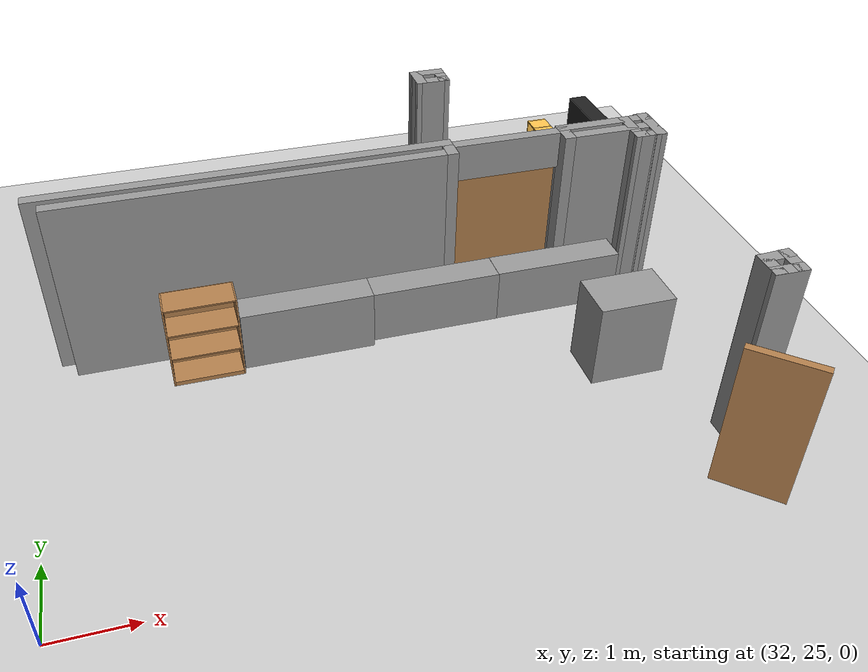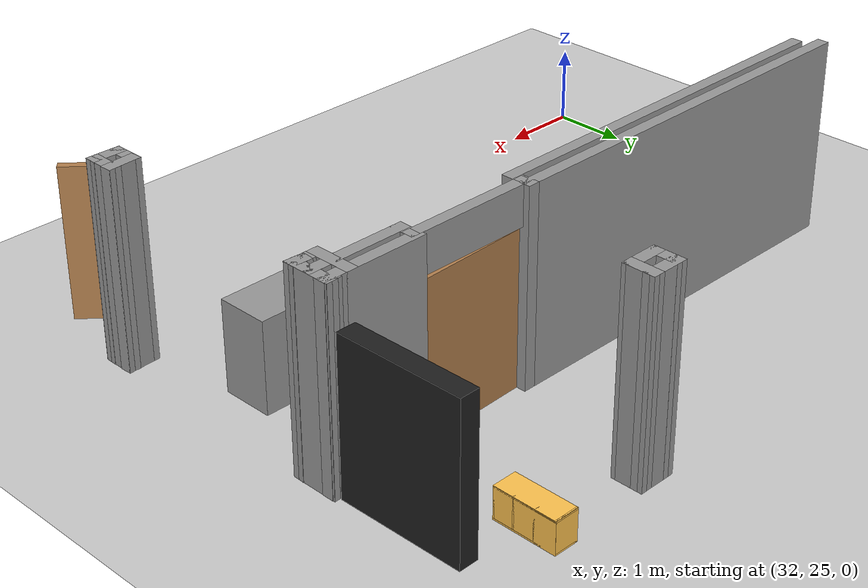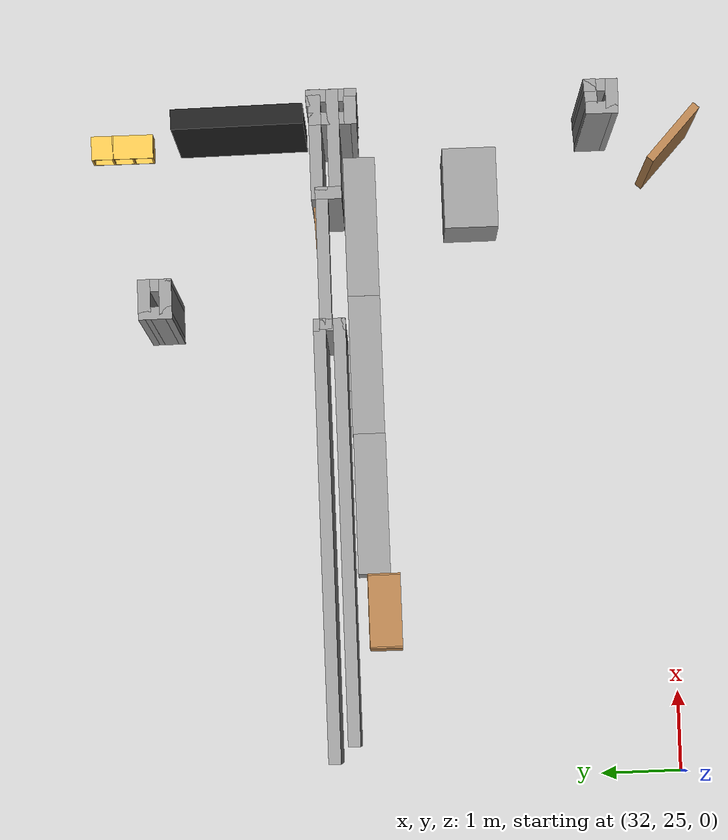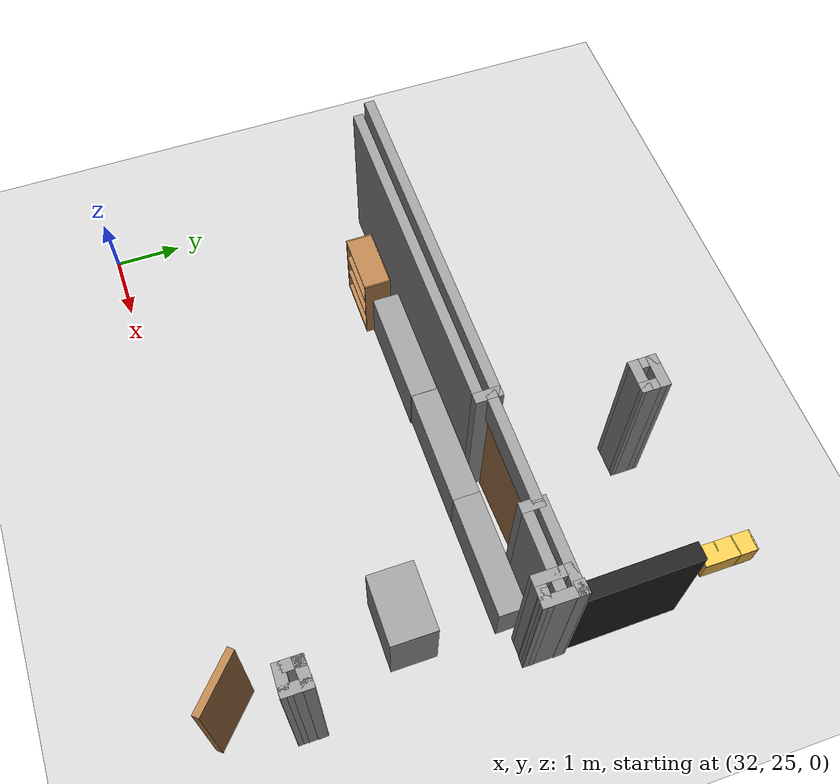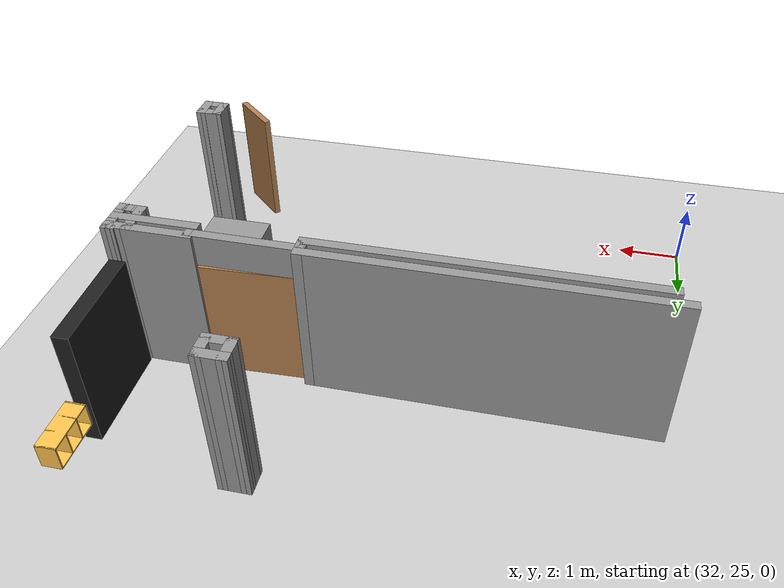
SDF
<sdf version="1.6">
 <world name="default">
  <model name="ground_plane">
   <static>1</static>
   <link name="link">
    <collision name="collision">
     <geometry><plane><normal>0 0 1</normal><size>100 100</size></plane></geometry>
     <surface><friction><ode><mu>100</mu><mu2>50</mu2></ode></friction></surface>
    </collision>
    <visual name="visual">
     <cast_shadows>0</cast_shadows>
     <geometry><plane><normal>0 0 1</normal><size>100 100</size></plane></geometry>
     <material>
      <script><uri>file://media/materials/scripts/gazebo.material</uri><name>Gazebo/Grey</name></script>
     </material>
    </visual>
   </link>
  </model>
  <model name="CVSSP">
   <pose>23.8714 24.094 0 0 -0 0</pose>
   <link name="Wall_10">
    <collision name="Wall_10_Collision">
     <geometry><box><size>0.244894 0.15 2.5</size></box></geometry>
     <pose>0 0 1.25 0 -0 0</pose>
    </collision>
    <visual name="Wall_10_Visual">
     <pose>0 0 1.25 0 -0 0</pose>
     <geometry><box><size>0.244894 0.15 2.5</size></box></geometry>
     <material>
      <script><uri>file://media/materials/scripts/gazebo.material</uri><name>Gazebo/Grey</name></script>
      <ambient>1 1 1 1</ambient>
     </material>
    </visual>
    <pose>16.3427 4.74414 0 0 -0 3.0813</pose>
   </link>
   <link name="Wall_101">
    <collision name="Wall_101_Collision">
     <geometry><box><size>0.38805 0.15 2.5</size></box></geometry>
     <pose>0 0 1.25 0 -0 0</pose>
    </collision>
    <visual name="Wall_101_Visual">
     <pose>0 0 1.25 0 -0 0</pose>
     <geometry><box><size>0.38805 0.15 2.5</size></box></geometry>
     <material>
      <script><uri>file://media/materials/scripts/gazebo.material</uri><name>Gazebo/Grey</name></script>
      <ambient>1 1 1 1</ambient>
     </material>
    </visual>
    <pose>13.6125 5.08725 0 0 0 -1.5708</pose>
   </link>
   <link name="Wall_103">
    <pose>14.4193 5.12692 0 0 -0 3.13861</pose>
    <visual name="Wall_103_Visual_0">
     <pose>-0.803949 0 1.25 0 -0 0</pose>
     <geometry><box><size>0.113401 0.15 2.5</size></box></geometry>
     <material>
      <script><uri>file://media/materials/scripts/gazebo.material</uri><name>Gazebo/Grey</name></script>
      <ambient>1 1 1 1</ambient>
     </material>
    </visual>
    <collision name="Wall_103_Collision_0">
     <geometry><box><size>0.113401 0.15 2.5</size></box></geometry>
     <pose>-0.803949 0 1.25 0 -0 0</pose>
    </collision>
    <visual name="Wall_103_Visual_1">
     <pose>0.799121 0 1.25 0 -0 0</pose>
     <geometry><box><size>0.123058 0.15 2.5</size></box></geometry>
     <material>
      <script><uri>file://media/materials/scripts/gazebo.material</uri><name>Gazebo/Grey</name></script>
      <ambient>1 1 1 1</ambient>
     </material>
    </visual>
    <collision name="Wall_103_Collision_1">
     <geometry><box><size>0.123058 0.15 2.5</size></box></geometry>
     <pose>0.799121 0 1.25 0 -0 0</pose>
    </collision>
    <visual name="Wall_103_Visual_2">
     <pose>-0.004828 0 2.25 0 -0 0</pose>
     <geometry><box><size>1.48484 0.15 0.5</size></box></geometry>
     <material>
      <script><uri>file://media/materials/scripts/gazebo.material</uri><name>Gazebo/Grey</name></script>
      <ambient>1 1 1 1</ambient>
     </material>
    </visual>
    <collision name="Wall_103_Collision_2">
     <geometry><box><size>1.48484 0.15 0.5</size></box></geometry>
     <pose>-0.004828 0 2.25 0 -0 0</pose>
    </collision>
   </link>
   <link name="Wall_105">
    <collision name="Wall_105_Collision">
     <geometry><box><size>0.321526 0.15 2.5</size></box></geometry>
     <pose>0 0 1.25 0 -0 0</pose>
    </collision>
    <visual name="Wall_105_Visual">
     <pose>0 0 1.25 0 -0 0</pose>
     <geometry><box><size>0.321526 0.15 2.5</size></box></geometry>
     <material>
      <script><uri>file://media/materials/scripts/gazebo.material</uri><name>Gazebo/Grey</name></script>
      <ambient>1 1 1 1</ambient>
     </material>
    </visual>
    <pose>15.205 5.04453 0 0 0 -1.5708</pose>
   </link>
   <link name="Wall_106">
    <collision name="Wall_106_Collision">
     <geometry><box><size>1.33354 0.15 2.5</size></box></geometry>
     <pose>0 0 1.25 0 -0 0</pose>
    </collision>
    <visual name="Wall_106_Visual">
     <pose>0 0 1.25 0 -0 0</pose>
     <geometry><box><size>1.33354 0.15 2.5</size></box></geometry>
     <material>
      <script><uri>file://media/materials/scripts/gazebo.material</uri><name>Gazebo/Grey</name></script>
      <ambient>1 1 1 1</ambient>
     </material>
    </visual>
    <pose>15.7968 4.95877 0 0 -0 0</pose>
   </link>
   <link name="Wall_108">
    <collision name="Wall_108_Collision">
     <geometry><box><size>0.336995 0.15 2.5</size></box></geometry>
     <pose>0 0 1.25 0 -0 0</pose>
    </collision>
    <visual name="Wall_108_Visual">
     <pose>0 0 1.25 0 -0 0</pose>
     <geometry><box><size>0.336995 0.15 2.5</size></box></geometry>
     <material>
      <script><uri>file://media/materials/scripts/gazebo.material</uri><name>Gazebo/Grey</name></script>
      <ambient>1 1 1 1</ambient>
     </material>
    </visual>
    <pose>16.2019 4.74711 0 0 -0 3.1404</pose>
   </link>
   <link name="Wall_109">
    <collision name="Wall_109_Collision">
     <geometry><box><size>0.578815 0.15 2.5</size></box></geometry>
     <pose>0 0 1.25 0 -0 0</pose>
    </collision>
    <visual name="Wall_109_Visual">
     <pose>0 0 1.25 0 -0 0</pose>
     <geometry><box><size>0.578815 0.15 2.5</size></box></geometry>
     <material>
      <script><uri>file://media/materials/scripts/gazebo.material</uri><name>Gazebo/Grey</name></script>
      <ambient>1 1 1 1</ambient>
     </material>
    </visual>
    <pose>16.1084 4.96163 0 0 -0 1.5708</pose>
   </link>
   <link name="Wall_110">
    <collision name="Wall_110_Collision">
     <geometry><box><size>0.435877 0.15 2.5</size></box></geometry>
     <pose>0 0 1.25 0 -0 0</pose>
    </collision>
    <visual name="Wall_110_Visual">
     <pose>0 0 1.25 0 -0 0</pose>
     <geometry><box><size>0.435877 0.15 2.5</size></box></geometry>
     <material>
      <script><uri>file://media/materials/scripts/gazebo.material</uri><name>Gazebo/Grey</name></script>
      <ambient>1 1 1 1</ambient>
     </material>
    </visual>
    <pose>16.2513 5.17604 0 0 -0 0</pose>
   </link>
   <link name="Wall_112">
    <collision name="Wall_112_Collision">
     <geometry><box><size>1.05344 0.15 2.5</size></box></geometry>
     <pose>0 0 1.25 0 -0 0</pose>
    </collision>
    <visual name="Wall_112_Visual">
     <pose>0 0 1.25 0 -0 0</pose>
     <geometry><box><size>1.05344 0.15 2.5</size></box></geometry>
     <material>
      <script><uri>file://media/materials/scripts/gazebo.material</uri><name>Gazebo/Grey</name></script>
      <ambient>1 1 1 1</ambient>
     </material>
    </visual>
    <pose>15.6567 5.17604 0 0 -0 3.14159</pose>
   </link>
   <link name="Wall_48">
    <collision name="Wall_48_Collision">
     <geometry><box><size>0.485616 0.15 2.5</size></box></geometry>
     <pose>0 0 1.25 0 -0 0</pose>
    </collision>
    <visual name="Wall_48_Visual">
     <pose>0 0 1.25 0 -0 0</pose>
     <geometry><box><size>0.485616 0.15 2.5</size></box></geometry>
     <material>
      <script><uri>file://media/materials/scripts/gazebo.material</uri><name>Gazebo/Grey</name></script>
      <ambient>1 1 1 1</ambient>
     </material>
    </visual>
    <pose>13.9944 7.29164 0 0 0 -0.000129</pose>
   </link>
   <link name="Wall_49">
    <collision name="Wall_49_Collision">
     <geometry><box><size>0.405637 0.15 2.5</size></box></geometry>
     <pose>0 0 1.25 0 -0 0</pose>
    </collision>
    <visual name="Wall_49_Visual">
     <pose>0 0 1.25 0 -0 0</pose>
     <geometry><box><size>0.405637 0.15 2.5</size></box></geometry>
     <material>
      <script><uri>file://media/materials/scripts/gazebo.material</uri><name>Gazebo/Grey</name></script>
      <ambient>1 1 1 1</ambient>
     </material>
    </visual>
    <pose>14.162 7.1638 0 0 0 -1.57228</pose>
   </link>
   <link name="Wall_50">
    <collision name="Wall_50_Collision">
     <geometry><box><size>0.483145 0.15 2.5</size></box></geometry>
     <pose>0 0 1.25 0 -0 0</pose>
    </collision>
    <visual name="Wall_50_Visual">
     <pose>0 0 1.25 0 -0 0</pose>
     <geometry><box><size>0.483145 0.15 2.5</size></box></geometry>
     <material>
      <script><uri>file://media/materials/scripts/gazebo.material</uri><name>Gazebo/Grey</name></script>
      <ambient>1 1 1 1</ambient>
     </material>
    </visual>
    <pose>13.9952 7.03593 0 0 0 -3.14129</pose>
   </link>
   <link name="Wall_51">
    <collision name="Wall_51_Collision">
     <geometry><box><size>0.405791 0.15 2.5</size></box></geometry>
     <pose>0 0 1.25 0 -0 0</pose>
    </collision>
    <visual name="Wall_51_Visual">
     <pose>0 0 1.25 0 -0 0</pose>
     <geometry><box><size>0.405791 0.15 2.5</size></box></geometry>
     <material>
      <script><uri>file://media/materials/scripts/gazebo.material</uri><name>Gazebo/Grey</name></script>
      <ambient>1 1 1 1</ambient>
     </material>
    </visual>
    <pose>13.8276 7.16378 0 0 -0 1.5792</pose>
   </link>
   <link name="Wall_729">
    <collision name="Wall_729_Collision">
     <geometry><box><size>0.409263 0.15 2.5</size></box></geometry>
     <pose>0 0 1.25 0 -0 0</pose>
    </collision>
    <visual name="Wall_729_Visual">
     <pose>0 0 1.25 0 -0 0</pose>
     <geometry><box><size>0.409263 0.15 2.5</size></box></geometry>
     <material>
      <script><uri>file://media/materials/scripts/gazebo.material</uri><name>Gazebo/Grey</name></script>
      <ambient>1 1 1 1</ambient>
     </material>
    </visual>
    <pose>16.3949 1.72388 0 0 -0 1.57329</pose>
   </link>
   <link name="Wall_730">
    <collision name="Wall_730_Collision">
     <geometry><box><size>0.423174 0.15 2.5</size></box></geometry>
     <pose>0 0 1.25 0 -0 0</pose>
    </collision>
    <visual name="Wall_730_Visual">
     <pose>0 0 1.25 0 -0 0</pose>
     <geometry><box><size>0.423174 0.15 2.5</size></box></geometry>
     <material>
      <script><uri>file://media/materials/scripts/gazebo.material</uri><name>Gazebo/Grey</name></script>
      <ambient>1 1 1 1</ambient>
     </material>
    </visual>
    <pose>16.2619 1.84596 0 0 0 -3.08621</pose>
   </link>
   <link name="Wall_731">
    <collision name="Wall_731_Collision">
     <geometry><box><size>0.388455 0.15 2.5</size></box></geometry>
     <pose>0 0 1.25 0 -0 0</pose>
    </collision>
    <visual name="Wall_731_Visual">
     <pose>0 0 1.25 0 -0 0</pose>
     <geometry><box><size>0.388455 0.15 2.5</size></box></geometry>
     <material>
      <script><uri>file://media/materials/scripts/gazebo.material</uri><name>Gazebo/Grey</name></script>
      <ambient>1 1 1 1</ambient>
     </material>
    </visual>
    <pose>16.1221 1.71917 0 0 0 -1.56809</pose>
   </link>
   <link name="Wall_732">
    <collision name="Wall_732_Collision">
     <geometry><box><size>0.422814 0.15 2.5</size></box></geometry>
     <pose>0 0 1.25 0 -0 0</pose>
    </collision>
    <visual name="Wall_732_Visual">
     <pose>0 0 1.25 0 -0 0</pose>
     <geometry><box><size>0.422814 0.15 2.5</size></box></geometry>
     <material>
      <script><uri>file://media/materials/scripts/gazebo.material</uri><name>Gazebo/Grey</name></script>
      <ambient>1 1 1 1</ambient>
     </material>
    </visual>
    <pose>16.2588 1.5934 0 0 0 -0.020841</pose>
   </link>
   <link name="Wall_8">
    <collision name="Wall_8_Collision">
     <geometry><box><size>0.200072 0.15 2.5</size></box></geometry>
     <pose>0 0 1.25 0 -0 0</pose>
    </collision>
    <visual name="Wall_8_Visual">
     <pose>0 0 1.25 0 -0 0</pose>
     <geometry><box><size>0.200072 0.15 2.5</size></box></geometry>
     <material>
      <script><uri>file://media/materials/scripts/gazebo.material</uri><name>Gazebo/Grey</name></script>
      <ambient>1 1 1 1</ambient>
     </material>
    </visual>
    <pose>16.3651 5.20082 0 0 -0 0.028929</pose>
   </link>
   <link name="Wall_9">
    <collision name="Wall_9_Collision">
     <geometry><box><size>0.610308 0.15 2.5</size></box></geometry>
     <pose>0 0 1.25 0 -0 0</pose>
    </collision>
    <visual name="Wall_9_Visual">
     <pose>0 0 1.25 0 -0 0</pose>
     <geometry><box><size>0.610308 0.15 2.5</size></box></geometry>
     <material>
      <script><uri>file://media/materials/scripts/gazebo.material</uri><name>Gazebo/Grey</name></script>
      <ambient>1 1 1 1</ambient>
     </material>
    </visual>
    <pose>16.3901 4.97141 0 0 0 -1.5708</pose>
   </link>
   <link name="Wall_95">
    <collision name="Wall_95_Collision">
     <geometry><box><size>5.10938 0.15 2.5</size></box></geometry>
     <pose>0 0 1.25 0 -0 0</pose>
    </collision>
    <visual name="Wall_95_Visual">
     <pose>0 0 1.25 0 -0 0</pose>
     <geometry><box><size>5.10938 0.15 2.5</size></box></geometry>
     <material>
      <script><uri>file://media/materials/scripts/gazebo.material</uri><name>Gazebo/Grey</name></script>
      <ambient>1 1 1 1</ambient>
     </material>
    </visual>
    <pose>11.1328 4.96823 0 0 -0 0</pose>
   </link>
   <link name="Wall_99">
    <collision name="Wall_99_Collision">
     <geometry><box><size>5.30775 0.15 2.5</size></box></geometry>
     <pose>0 0 1.25 0 -0 0</pose>
    </collision>
    <visual name="Wall_99_Visual">
     <pose>0 0 1.25 0 -0 0</pose>
     <geometry><box><size>5.30775 0.15 2.5</size></box></geometry>
     <material>
      <script><uri>file://media/materials/scripts/gazebo.material</uri><name>Gazebo/Grey</name></script>
      <ambient>1 1 1 1</ambient>
     </material>
    </visual>
    <pose>11.0336 5.20628 0 0 -0 3.14159</pose>
   </link>
   <static>1</static>
  </model>
  <model name="bookshelf_oak">
   <link name="link">
    <inertial><mass>1</mass></inertial>
    <visual name="visual4">
     <pose>0 -0.195 0.03 0 -0 0</pose>
     <geometry><box><size>0.88 0.4 0.06</size></box></geometry>
     <material>
      <script><uri>file://media/materials/scripts/gazebo.material</uri><name>Gazebo/Wood</name></script>
      <shader type="pixel"/>
     </material>
    </visual>
    <visual name="visual3">
     <pose>-0.45 -0.195 0.6 0 -0 0</pose>
     <geometry><box><size>0.02 0.4 1.2</size></box></geometry>
     <material>
      <script><uri>file://media/materials/scripts/gazebo.material</uri><name>Gazebo/Wood</name></script>
      <shader type="pixel"/>
     </material>
    </visual>
    <visual name="visual5">
     <pose>0 -0.195 1.19 0 -0 0</pose>
     <geometry><box><size>0.88 0.4 0.02</size></box></geometry>
     <material>
      <script><uri>file://media/materials/scripts/gazebo.material</uri><name>Gazebo/Wood</name></script>
      <shader type="pixel"/>
     </material>
    </visual>
    <visual name="visual2">
     <pose>0.45 -0.195 0.6 0 -0 0</pose>
     <geometry><box><size>0.02 0.4 1.2</size></box></geometry>
     <material>
      <script><uri>file://media/materials/scripts/gazebo.material</uri><name>Gazebo/Wood</name></script>
      <shader type="pixel"/>
     </material>
    </visual>
    <visual name="visual1">
     <pose>0 0.005 0.6 0 -0 0</pose>
     <geometry><box><size>0.9 0.01 1.2</size></box></geometry>
     <material>
      <script><uri>file://media/materials/scripts/gazebo.material</uri><name>Gazebo/Wood</name></script>
      <shader type="pixel"/>
     </material>
    </visual>
    <visual name="visual6">
     <pose>0 -0.195 0.43 0 -0 0</pose>
     <geometry><box><size>0.88 0.4 0.02</size></box></geometry>
     <material>
      <script><uri>file://media/materials/scripts/gazebo.material</uri><name>Gazebo/Wood</name></script>
      <shader type="pixel"/>
     </material>
    </visual>
    <visual name="visual7">
     <pose>0 -0.195 0.8 0 -0 0</pose>
     <geometry><box><size>0.88 0.4 0.02</size></box></geometry>
     <material>
      <script><uri>file://media/materials/scripts/gazebo.material</uri><name>Gazebo/Wood</name></script>
      <shader type="pixel"/>
     </material>
    </visual>
    <collision name="back">
     <pose>0 0.005 0.6 0 -0 0</pose>
     <geometry><box><size>0.9 0.01 1.2</size></box></geometry>
     <surface>
      <friction>
       <ode><mu>1</mu><mu2>1</mu2><fdir1>0 0 0</fdir1><slip1>0</slip1><slip2>0</slip2></ode>
       <torsional>
        <coefficient>1</coefficient>
        <patch_radius>0</patch_radius>
        <surface_radius>0</surface_radius>
        <use_patch_radius>1</use_patch_radius>
        <ode><slip>0</slip></ode>
       </torsional>
      </friction>
      <bounce><restitution_coefficient>0</restitution_coefficient><threshold>1e+06</threshold></bounce>
      <contact>
       <collide_without_contact>0</collide_without_contact>
       <collide_without_contact_bitmask>1</collide_without_contact_bitmask>
       <collide_bitmask>1</collide_bitmask>
       <ode>
        <soft_cfm>0</soft_cfm>
        <soft_erp>0.2</soft_erp>
        <kp>1e+13</kp>
        <kd>1</kd>
        <max_vel>0.01</max_vel>
        <min_depth>0</min_depth>
       </ode>
       <bullet>
        <split_impulse>1</split_impulse>
        <split_impulse_penetration_threshold>-0.01</split_impulse_penetration_threshold>
        <soft_cfm>0</soft_cfm>
        <soft_erp>0.2</soft_erp>
        <kp>1e+13</kp>
        <kd>1</kd>
       </bullet>
      </contact>
     </surface>
    </collision>
    <collision name="left_side">
     <pose>0.45 -0.195 0.6 0 -0 0</pose>
     <geometry><box><size>0.02 0.4 1.2</size></box></geometry>
     <surface>
      <friction>
       <ode><mu>1</mu><mu2>1</mu2><fdir1>0 0 0</fdir1><slip1>0</slip1><slip2>0</slip2></ode>
       <torsional>
        <coefficient>1</coefficient>
        <patch_radius>0</patch_radius>
        <surface_radius>0</surface_radius>
        <use_patch_radius>1</use_patch_radius>
        <ode><slip>0</slip></ode>
       </torsional>
      </friction>
      <bounce><restitution_coefficient>0</restitution_coefficient><threshold>1e+06</threshold></bounce>
      <contact>
       <collide_without_contact>0</collide_without_contact>
       <collide_without_contact_bitmask>1</collide_without_contact_bitmask>
       <collide_bitmask>1</collide_bitmask>
       <ode>
        <soft_cfm>0</soft_cfm>
        <soft_erp>0.2</soft_erp>
        <kp>1e+13</kp>
        <kd>1</kd>
        <max_vel>0.01</max_vel>
        <min_depth>0</min_depth>
       </ode>
       <bullet>
        <split_impulse>1</split_impulse>
        <split_impulse_penetration_threshold>-0.01</split_impulse_penetration_threshold>
        <soft_cfm>0</soft_cfm>
        <soft_erp>0.2</soft_erp>
        <kp>1e+13</kp>
        <kd>1</kd>
       </bullet>
      </contact>
     </surface>
    </collision>
    <collision name="right_side">
     <pose>-0.45 -0.195 0.6 0 -0 0</pose>
     <geometry><box><size>0.02 0.4 1.2</size></box></geometry>
     <surface>
      <friction>
       <ode><mu>1</mu><mu2>1</mu2><fdir1>0 0 0</fdir1><slip1>0</slip1><slip2>0</slip2></ode>
       <torsional>
        <coefficient>1</coefficient>
        <patch_radius>0</patch_radius>
        <surface_radius>0</surface_radius>
        <use_patch_radius>1</use_patch_radius>
        <ode><slip>0</slip></ode>
       </torsional>
      </friction>
      <bounce><restitution_coefficient>0</restitution_coefficient><threshold>1e+06</threshold></bounce>
      <contact>
       <collide_without_contact>0</collide_without_contact>
       <collide_without_contact_bitmask>1</collide_without_contact_bitmask>
       <collide_bitmask>1</collide_bitmask>
       <ode>
        <soft_cfm>0</soft_cfm>
        <soft_erp>0.2</soft_erp>
        <kp>1e+13</kp>
        <kd>1</kd>
        <max_vel>0.01</max_vel>
        <min_depth>0</min_depth>
       </ode>
       <bullet>
        <split_impulse>1</split_impulse>
        <split_impulse_penetration_threshold>-0.01</split_impulse_penetration_threshold>
        <soft_cfm>0</soft_cfm>
        <soft_erp>0.2</soft_erp>
        <kp>1e+13</kp>
        <kd>1</kd>
       </bullet>
      </contact>
     </surface>
    </collision>
    <collision name="bottom">
     <pose>0 -0.195 0.03 0 -0 0</pose>
     <geometry><box><size>0.88 0.4 0.06</size></box></geometry>
     <surface>
      <friction>
       <ode><mu>1</mu><mu2>1</mu2><fdir1>0 0 0</fdir1><slip1>0</slip1><slip2>0</slip2></ode>
       <torsional>
        <coefficient>1</coefficient>
        <patch_radius>0</patch_radius>
        <surface_radius>0</surface_radius>
        <use_patch_radius>1</use_patch_radius>
        <ode><slip>0</slip></ode>
       </torsional>
      </friction>
      <bounce><restitution_coefficient>0</restitution_coefficient><threshold>1e+06</threshold></bounce>
      <contact>
       <collide_without_contact>0</collide_without_contact>
       <collide_without_contact_bitmask>1</collide_without_contact_bitmask>
       <collide_bitmask>1</collide_bitmask>
       <ode>
        <soft_cfm>0</soft_cfm>
        <soft_erp>0.2</soft_erp>
        <kp>1e+13</kp>
        <kd>1</kd>
        <max_vel>0.01</max_vel>
        <min_depth>0</min_depth>
       </ode>
       <bullet>
        <split_impulse>1</split_impulse>
        <split_impulse_penetration_threshold>-0.01</split_impulse_penetration_threshold>
        <soft_cfm>0</soft_cfm>
        <soft_erp>0.2</soft_erp>
        <kp>1e+13</kp>
        <kd>1</kd>
       </bullet>
      </contact>
     </surface>
    </collision>
    <collision name="top">
     <pose>0 -0.195 1.19 0 -0 0</pose>
     <geometry><box><size>0.88 0.4 0.02</size></box></geometry>
     <surface>
      <friction>
       <ode><mu>1</mu><mu2>1</mu2><fdir1>0 0 0</fdir1><slip1>0</slip1><slip2>0</slip2></ode>
       <torsional>
        <coefficient>1</coefficient>
        <patch_radius>0</patch_radius>
        <surface_radius>0</surface_radius>
        <use_patch_radius>1</use_patch_radius>
        <ode><slip>0</slip></ode>
       </torsional>
      </friction>
      <bounce><restitution_coefficient>0</restitution_coefficient><threshold>1e+06</threshold></bounce>
      <contact>
       <collide_without_contact>0</collide_without_contact>
       <collide_without_contact_bitmask>1</collide_without_contact_bitmask>
       <collide_bitmask>1</collide_bitmask>
       <ode>
        <soft_cfm>0</soft_cfm>
        <soft_erp>0.2</soft_erp>
        <kp>1e+13</kp>
        <kd>1</kd>
        <max_vel>0.01</max_vel>
        <min_depth>0</min_depth>
       </ode>
       <bullet>
        <split_impulse>1</split_impulse>
        <split_impulse_penetration_threshold>-0.01</split_impulse_penetration_threshold>
        <soft_cfm>0</soft_cfm>
        <soft_erp>0.2</soft_erp>
        <kp>1e+13</kp>
        <kd>1</kd>
       </bullet>
      </contact>
     </surface>
    </collision>
    <collision name="low_shelf">
     <pose>0 -0.195 0.43 0 -0 0</pose>
     <geometry><box><size>0.88 0.4 0.02</size></box></geometry>
     <surface>
      <friction>
       <ode><mu>1</mu><mu2>1</mu2><fdir1>0 0 0</fdir1><slip1>0</slip1><slip2>0</slip2></ode>
       <torsional>
        <coefficient>1</coefficient>
        <patch_radius>0</patch_radius>
        <surface_radius>0</surface_radius>
        <use_patch_radius>1</use_patch_radius>
        <ode><slip>0</slip></ode>
       </torsional>
      </friction>
      <bounce><restitution_coefficient>0</restitution_coefficient><threshold>1e+06</threshold></bounce>
      <contact>
       <collide_without_contact>0</collide_without_contact>
       <collide_without_contact_bitmask>1</collide_without_contact_bitmask>
       <collide_bitmask>1</collide_bitmask>
       <ode>
        <soft_cfm>0</soft_cfm>
        <soft_erp>0.2</soft_erp>
        <kp>1e+13</kp>
        <kd>1</kd>
        <max_vel>0.01</max_vel>
        <min_depth>0</min_depth>
       </ode>
       <bullet>
        <split_impulse>1</split_impulse>
        <split_impulse_penetration_threshold>-0.01</split_impulse_penetration_threshold>
        <soft_cfm>0</soft_cfm>
        <soft_erp>0.2</soft_erp>
        <kp>1e+13</kp>
        <kd>1</kd>
       </bullet>
      </contact>
     </surface>
    </collision>
    <collision name="high_shelf">
     <pose>0 -0.195 0.8 0 -0 0</pose>
     <geometry><box><size>0.88 0.4 0.02</size></box></geometry>
     <surface>
      <friction>
       <ode><mu>1</mu><mu2>1</mu2><fdir1>0 0 0</fdir1><slip1>0</slip1><slip2>0</slip2></ode>
       <torsional>
        <coefficient>1</coefficient>
        <patch_radius>0</patch_radius>
        <surface_radius>0</surface_radius>
        <use_patch_radius>1</use_patch_radius>
        <ode><slip>0</slip></ode>
       </torsional>
      </friction>
      <bounce><restitution_coefficient>0</restitution_coefficient><threshold>1e+06</threshold></bounce>
      <contact>
       <collide_without_contact>0</collide_without_contact>
       <collide_without_contact_bitmask>1</collide_without_contact_bitmask>
       <collide_bitmask>1</collide_bitmask>
       <ode>
        <soft_cfm>0</soft_cfm>
        <soft_erp>0.2</soft_erp>
        <kp>1e+13</kp>
        <kd>1</kd>
        <max_vel>0.01</max_vel>
        <min_depth>0</min_depth>
       </ode>
       <bullet>
        <split_impulse>1</split_impulse>
        <split_impulse_penetration_threshold>-0.01</split_impulse_penetration_threshold>
        <soft_cfm>0</soft_cfm>
        <soft_erp>0.2</soft_erp>
        <kp>1e+13</kp>
        <kd>1</kd>
       </bullet>
      </contact>
     </surface>
    </collision>
   </link>
   <static>1</static>
   <pose>34.0934 28.8353 0 0 -0 0</pose>
  </model>
  <model name="ply_wood_under_box">
   <link name="link">
    <inertial>
     <mass>1</mass>
     <inertia>
      <ixx>0.166667</ixx>
      <ixy>0</ixy>
      <ixz>0</ixz>
      <iyy>0.166667</iyy>
      <iyz>0</iyz>
      <izz>0.166667</izz>
     </inertia>
    </inertial>
    <gravity>0</gravity>
    <visual name="visual">
     <geometry><box><size>1 0.665679 1.59079</size></box></geometry>
     <material>
      <script><name>Gazebo/Grey</name><uri>file://media/materials/scripts/gazebo.material</uri></script>
      <shader type="pixel"><normal_map>__default__</normal_map></shader>
     </material>
    </visual>
    <collision name="collision">
     <geometry><box><size>1 0.665679 1.59079</size></box></geometry>
     <surface>
      <friction>
       <ode><mu>1</mu><mu2>1</mu2><fdir1>0 0 0</fdir1><slip1>0</slip1><slip2>0</slip2></ode>
       <torsional>
        <coefficient>1</coefficient>
        <patch_radius>0</patch_radius>
        <surface_radius>0</surface_radius>
        <use_patch_radius>1</use_patch_radius>
        <ode><slip>0</slip></ode>
       </torsional>
      </friction>
      <bounce><restitution_coefficient>0</restitution_coefficient><threshold>1e+06</threshold></bounce>
      <contact>
       <collide_without_contact>0</collide_without_contact>
       <collide_without_contact_bitmask>1</collide_without_contact_bitmask>
       <collide_bitmask>1</collide_bitmask>
       <ode>
        <soft_cfm>0</soft_cfm>
        <soft_erp>0.2</soft_erp>
        <kp>1e+13</kp>
        <kd>1</kd>
        <max_vel>0.01</max_vel>
        <min_depth>0</min_depth>
       </ode>
       <bullet>
        <split_impulse>1</split_impulse>
        <split_impulse_penetration_threshold>-0.01</split_impulse_penetration_threshold>
        <soft_cfm>0</soft_cfm>
        <soft_erp>0.2</soft_erp>
        <kp>1e+13</kp>
        <kd>1</kd>
       </bullet>
      </contact>
     </surface>
    </collision>
   </link>
   <static>1</static>
   <pose>39.3073 27.3923 0.362453 0 -0 0</pose>
  </model>
  <model name="plastic_box">
   <link name="Wall">
    <pose>0 0 0.1985 0 -0 0</pose>
    <inertial>
     <mass>5</mass>
     <inertia><ixx>0.1022</ixx><iyy>0.4107</iyy><izz>0.3815</izz><ixy>0</ixy><ixz>0</ixz><iyz>0</iyz></inertia>
    </inertial>
    <gravity>0</gravity>
    <visual name="Wall_Visual">
     <geometry><box><size>1.75 0.4 1</size></box></geometry>
     <material>
      <script><uri>file://media/materials/scripts/gazebo.material</uri><name>Gazebo/Grey</name></script>
      <ambient>1 1 1 1</ambient>
      <shader type="pixel"><normal_map>__default__</normal_map></shader>
      <diffuse>0.7 0.7 0.7 1</diffuse>
      <specular>0.01 0.01 0.01 1</specular>
      <emissive>0 0 0 1</emissive>
     </material>
    </visual>
    <collision name="Wall_Collision">
     <geometry><box><size>1.75 0.4 1</size></box></geometry>
     <surface>
      <friction>
       <ode><mu>1</mu><mu2>1</mu2><fdir1>0 0 0</fdir1><slip1>0</slip1><slip2>0</slip2></ode>
       <torsional>
        <coefficient>1</coefficient>
        <patch_radius>0</patch_radius>
        <surface_radius>0</surface_radius>
        <use_patch_radius>1</use_patch_radius>
        <ode><slip>0</slip></ode>
       </torsional>
      </friction>
      <bounce><restitution_coefficient>0</restitution_coefficient><threshold>1e+06</threshold></bounce>
      <contact>
       <collide_without_contact>0</collide_without_contact>
       <collide_without_contact_bitmask>1</collide_without_contact_bitmask>
       <collide_bitmask>1</collide_bitmask>
       <ode>
        <soft_cfm>0</soft_cfm>
        <soft_erp>0.2</soft_erp>
        <kp>1e+13</kp>
        <kd>1</kd>
        <max_vel>0.01</max_vel>
        <min_depth>0</min_depth>
       </ode>
       <bullet>
        <split_impulse>1</split_impulse>
        <split_impulse_penetration_threshold>-0.01</split_impulse_penetration_threshold>
        <soft_cfm>0</soft_cfm>
        <soft_erp>0.2</soft_erp>
        <kp>1e+13</kp>
        <kd>1</kd>
       </bullet>
      </contact>
     </surface>
    </collision>
   </link>
   <static>1</static>
   <pose>35.4417 28.7571 0.128476 0 -0 0</pose>
  </model>
  <model name="plastic_box_0_clone">
   <link name="Wall">
    <pose>0 0 0.1985 0 -0 0</pose>
    <inertial>
     <mass>5</mass>
     <inertia><ixx>0.1022</ixx><iyy>0.4107</iyy><izz>0.3815</izz><ixy>0</ixy><ixz>0</ixz><iyz>0</iyz></inertia>
    </inertial>
    <gravity>0</gravity>
    <visual name="Wall_Visual">
     <geometry><box><size>1.75 0.4 0.75</size></box></geometry>
     <material>
      <script><uri>file://media/materials/scripts/gazebo.material</uri><name>Gazebo/Grey</name></script>
      <ambient>1 1 1 1</ambient>
      <shader type="pixel"><normal_map>__default__</normal_map></shader>
      <diffuse>0.7 0.7 0.7 1</diffuse>
      <specular>0.01 0.01 0.01 1</specular>
      <emissive>0 0 0 1</emissive>
     </material>
    </visual>
    <collision name="Wall_Collision">
     <geometry><box><size>1.75 0.4 0.75</size></box></geometry>
     <surface>
      <friction>
       <ode><mu>1</mu><mu2>1</mu2><fdir1>0 0 0</fdir1><slip1>0</slip1><slip2>0</slip2></ode>
       <torsional>
        <coefficient>1</coefficient>
        <patch_radius>0</patch_radius>
        <surface_radius>0</surface_radius>
        <use_patch_radius>1</use_patch_radius>
        <ode><slip>0</slip></ode>
       </torsional>
      </friction>
      <bounce><restitution_coefficient>0</restitution_coefficient><threshold>1e+06</threshold></bounce>
      <contact>
       <collide_without_contact>0</collide_without_contact>
       <collide_without_contact_bitmask>1</collide_without_contact_bitmask>
       <collide_bitmask>1</collide_bitmask>
       <ode>
        <soft_cfm>0</soft_cfm>
        <soft_erp>0.2</soft_erp>
        <kp>1e+13</kp>
        <kd>1</kd>
        <max_vel>0.01</max_vel>
        <min_depth>0</min_depth>
       </ode>
       <bullet>
        <split_impulse>1</split_impulse>
        <split_impulse_penetration_threshold>-0.01</split_impulse_penetration_threshold>
        <soft_cfm>0</soft_cfm>
        <soft_erp>0.2</soft_erp>
        <kp>1e+13</kp>
        <kd>1</kd>
       </bullet>
      </contact>
     </surface>
    </collision>
   </link>
   <static>1</static>
   <pose>37.1813 28.7634 0.248155 0 -0 0</pose>
  </model>
  <model name="plastic_box_0_clone_0">
   <link name="Wall">
    <pose>0 0 0.1985 0 -0 0</pose>
    <inertial>
     <mass>5</mass>
     <inertia><ixx>0.1022</ixx><iyy>0.4107</iyy><izz>0.3815</izz><ixy>0</ixy><ixz>0</ixz><iyz>0</iyz></inertia>
    </inertial>
    <gravity>0</gravity>
    <visual name="Wall_Visual">
     <geometry><box><size>1.75 0.4 0.75</size></box></geometry>
     <material>
      <script><uri>file://media/materials/scripts/gazebo.material</uri><name>Gazebo/Grey</name></script>
      <ambient>1 1 1 1</ambient>
      <shader type="pixel"><normal_map>__default__</normal_map></shader>
      <diffuse>0.7 0.7 0.7 1</diffuse>
      <specular>0.01 0.01 0.01 1</specular>
      <emissive>0 0 0 1</emissive>
     </material>
    </visual>
    <collision name="Wall_Collision">
     <geometry><box><size>1.75 0.4 0.75</size></box></geometry>
     <surface>
      <friction>
       <ode><mu>1</mu><mu2>1</mu2><fdir1>0 0 0</fdir1><slip1>0</slip1><slip2>0</slip2></ode>
       <torsional>
        <coefficient>1</coefficient>
        <patch_radius>0</patch_radius>
        <surface_radius>0</surface_radius>
        <use_patch_radius>1</use_patch_radius>
        <ode><slip>0</slip></ode>
       </torsional>
      </friction>
      <bounce><restitution_coefficient>0</restitution_coefficient><threshold>1e+06</threshold></bounce>
      <contact>
       <collide_without_contact>0</collide_without_contact>
       <collide_without_contact_bitmask>1</collide_without_contact_bitmask>
       <collide_bitmask>1</collide_bitmask>
       <ode>
        <soft_cfm>0</soft_cfm>
        <soft_erp>0.2</soft_erp>
        <kp>1e+13</kp>
        <kd>1</kd>
        <max_vel>0.01</max_vel>
        <min_depth>0</min_depth>
       </ode>
       <bullet>
        <split_impulse>1</split_impulse>
        <split_impulse_penetration_threshold>-0.01</split_impulse_penetration_threshold>
        <soft_cfm>0</soft_cfm>
        <soft_erp>0.2</soft_erp>
        <kp>1e+13</kp>
        <kd>1</kd>
       </bullet>
      </contact>
     </surface>
    </collision>
   </link>
   <static>1</static>
   <pose>38.9213 28.7657 0.249906 0 -0 0</pose>
  </model>
  <model name="basic_ply_door_corrected_clone_0_clone_clone_1">
   <link name="link">
    <pose>-0 0 1.00385 0 -0 0</pose>
    <inertial>
     <mass>0.5167</mass>
     <inertia>
      <ixx>0.00086117</ixx>
      <ixy>0</ixy>
      <ixz>0</ixz>
      <iyy>0.00086117</iyy>
      <iyz>0</iyz>
      <izz>0.00086117</izz>
     </inertia>
    </inertial>
    <gravity>0</gravity>
    <visual name="visual">
     <geometry><box><size>0.88 0.1 1.96</size></box></geometry>
     <material>
      <script><uri>file://media/materials/scripts/gazebo.material</uri><name>Gazebo/Wood</name></script>
      <shader type="pixel"><normal_map>__default__</normal_map></shader>
      <ambient>1 1 1 1</ambient>
      <diffuse>1 1 1 1</diffuse>
      <specular>0.2 0.2 0.2 1</specular>
      <emissive>0 0 0 1</emissive>
     </material>
    </visual>
    <collision name="collision">
     <geometry><box><size>0.88 0.1 1.96</size></box></geometry>
     <surface>
      <friction>
       <ode><mu>1</mu><mu2>1</mu2><fdir1>0 0 0</fdir1><slip1>0</slip1><slip2>0</slip2></ode>
       <torsional>
        <coefficient>1</coefficient>
        <patch_radius>0</patch_radius>
        <surface_radius>0.01</surface_radius>
        <use_patch_radius>0</use_patch_radius>
        <ode><slip>0</slip></ode>
       </torsional>
      </friction>
      <bounce><restitution_coefficient>0</restitution_coefficient><threshold>1e+06</threshold></bounce>
      <contact>
       <collide_without_contact>0</collide_without_contact>
       <collide_without_contact_bitmask>1</collide_without_contact_bitmask>
       <collide_bitmask>1</collide_bitmask>
       <ode>
        <soft_cfm>0</soft_cfm>
        <soft_erp>0.2</soft_erp>
        <kp>100000</kp>
        <kd>100</kd>
        <max_vel>100</max_vel>
        <min_depth>0.001</min_depth>
       </ode>
       <bullet>
        <split_impulse>1</split_impulse>
        <split_impulse_penetration_threshold>-0.01</split_impulse_penetration_threshold>
        <soft_cfm>0</soft_cfm>
        <soft_erp>0.2</soft_erp>
        <kp>100000</kp>
        <kd>100</kd>
       </bullet>
      </contact>
     </surface>
    </collision>
   </link>
   <static>1</static>
   <pose>39.7565 24.918 -0.00101 0 -0 2.40024</pose>
  </model>
  <model name="metal_door_wide">
   <link name="link">
    <inertial>
     <mass>1</mass>
     <inertia>
      <ixx>0.166667</ixx>
      <ixy>0</ixy>
      <ixz>0</ixz>
      <iyy>0.166667</iyy>
      <iyz>0</iyz>
      <izz>0.166667</izz>
     </inertia>
    </inertial>
    <gravity>0</gravity>
    <visual name="visual">
     <geometry><box><size>0.249393 1.61603 1.94787</size></box></geometry>
     <material>
      <script><name>Gazebo/Black</name><uri>file://media/materials/scripts/gazebo.material</uri></script>
      <shader type="pixel"><normal_map>__default__</normal_map></shader>
      <ambient>0.01 0.001 0.001 1</ambient>
      <diffuse>0.7 0.7 0.7 1</diffuse>
      <specular>0.01 0.01 0.01 1</specular>
      <emissive>0 0 0 1</emissive>
     </material>
    </visual>
    <collision name="collision">
     <geometry><box><size>0.249393 1.61603 1.94787</size></box></geometry>
     <surface>
      <friction>
       <ode><mu>1</mu><mu2>1</mu2><fdir1>0 0 0</fdir1><slip1>0</slip1><slip2>0</slip2></ode>
       <torsional>
        <coefficient>1</coefficient>
        <patch_radius>0</patch_radius>
        <surface_radius>0</surface_radius>
        <use_patch_radius>1</use_patch_radius>
        <ode><slip>0</slip></ode>
       </torsional>
      </friction>
      <bounce><restitution_coefficient>0</restitution_coefficient><threshold>1e+06</threshold></bounce>
      <contact>
       <collide_without_contact>0</collide_without_contact>
       <collide_without_contact_bitmask>1</collide_without_contact_bitmask>
       <collide_bitmask>1</collide_bitmask>
       <ode>
        <soft_cfm>0</soft_cfm>
        <soft_erp>0.2</soft_erp>
        <kp>1e+13</kp>
        <kd>1</kd>
        <max_vel>0.01</max_vel>
        <min_depth>0</min_depth>
       </ode>
       <bullet>
        <split_impulse>1</split_impulse>
        <split_impulse_penetration_threshold>-0.01</split_impulse_penetration_threshold>
        <soft_cfm>0</soft_cfm>
        <soft_erp>0.2</soft_erp>
        <kp>1e+13</kp>
        <kd>1</kd>
       </bullet>
      </contact>
     </surface>
    </collision>
   </link>
   <static>1</static>
   <pose>40.1518 30.2272 1.00357 -0.00287 -0.001978 0.014033</pose>
  </model>
  <model name="basic_ply_door_corrected_wider">
   <link name="link">
    <pose>0.319611 -0 1.00385 0 -0 0.034884</pose>
    <inertial>
     <mass>0.5167</mass>
     <inertia>
      <ixx>0.00086117</ixx>
      <ixy>0</ixy>
      <ixz>0</ixz>
      <iyy>0.00086117</iyy>
      <iyz>0</iyz>
      <izz>0.00086117</izz>
     </inertia>
    </inertial>
    <visual name="visual">
     <geometry><box><size>1.4 0.1 1.96</size></box></geometry>
     <material>
      <script><uri>file://media/materials/scripts/gazebo.material</uri><name>Gazebo/Wood</name></script>
      <shader type="pixel"><normal_map>__default__</normal_map></shader>
      <ambient>1 1 1 1</ambient>
      <diffuse>1 1 1 1</diffuse>
      <specular>0.2 0.2 0.2 1</specular>
      <emissive>0 0 0 1</emissive>
     </material>
    </visual>
    <collision name="collision">
     <geometry><box><size>0.88 0.1 1.96</size></box></geometry>
     <surface>
      <friction>
       <ode><mu>1</mu><mu2>1</mu2><fdir1>0 0 0</fdir1><slip1>0</slip1><slip2>0</slip2></ode>
       <torsional>
        <coefficient>1</coefficient>
        <patch_radius>0</patch_radius>
        <surface_radius>0.01</surface_radius>
        <use_patch_radius>0</use_patch_radius>
        <ode><slip>0</slip></ode>
       </torsional>
      </friction>
      <bounce><restitution_coefficient>0</restitution_coefficient><threshold>1e+06</threshold></bounce>
      <contact>
       <collide_without_contact>0</collide_without_contact>
       <collide_without_contact_bitmask>1</collide_without_contact_bitmask>
       <collide_bitmask>1</collide_bitmask>
       <ode>
        <soft_cfm>0</soft_cfm>
        <soft_erp>0.2</soft_erp>
        <kp>100000</kp>
        <kd>100</kd>
        <max_vel>100</max_vel>
        <min_depth>0.001</min_depth>
       </ode>
       <bullet>
        <split_impulse>1</split_impulse>
        <split_impulse_penetration_threshold>-0.01</split_impulse_penetration_threshold>
        <soft_cfm>0</soft_cfm>
        <soft_erp>0.2</soft_erp>
        <kp>100000</kp>
        <kd>100</kd>
       </bullet>
      </contact>
     </surface>
    </collision>
   </link>
   <static>1</static>
   <pose>37.9694 29.2523 -0 0 -0 0</pose>
  </model>
  <model name="Wall_Cabinet_15x30_clone_1_clone">
   <pose>39.9826 31.7026 0.720413 0 -0 0</pose>
   <link name="Wall_0">
    <pose>0 0.374 0.192 0 -0 0</pose>
    <inertial>
     <mass>0.9882</mass>
     <inertia><ixx>0.0072</ixx><iyy>0.0194</iyy><izz>0.0122</izz><ixy>0</ixy><ixz>0</ixz><iyz>0</iyz></inertia>
    </inertial>
    <collision name="Wall_0_Collision"><geometry><box><size>0.296 0.02 0.384</size></box></geometry></collision>
    <visual name="Wall_0_Visual">
     <geometry><box><size>0.296 0.02 0.384</size></box></geometry>
     <material>
      <script><uri>file://media/materials/scripts/gazebo.material</uri><name>Gazebo/Grey</name></script>
      <ambient>1 0.764706 0.305882 1</ambient>
     </material>
    </visual>
   </link>
   <joint name="0_2" type="fixed">
    <pose>0 0 0.192 0 -0 0</pose>
    <parent>Wall_2</parent>
    <child>Wall_0</child>
    <axis>
     <xyz>0 0 1</xyz>
     <use_parent_model_frame>0</use_parent_model_frame>
     <limit><lower>-1e+16</lower><upper>1e+16</upper></limit>
    </axis>
   </joint>
   <joint name="0_4" type="fixed">
    <pose>0 0 -0.192 0 -0 0</pose>
    <parent>Wall_4</parent>
    <child>Wall_0</child>
    <axis>
     <xyz>0 0 1</xyz>
     <use_parent_model_frame>0</use_parent_model_frame>
     <limit><lower>-1e+16</lower><upper>1e+16</upper></limit>
    </axis>
   </joint>
   <joint name="0_15" type="fixed">
    <pose>0.148 0 0 0 -0 0</pose>
    <parent>Wall_15</parent>
    <child>Wall_0</child>
    <axis>
     <xyz>1 0 0</xyz>
     <use_parent_model_frame>0</use_parent_model_frame>
     <limit><lower>-1e+16</lower><upper>1e+16</upper></limit>
    </axis>
   </joint>
   <link name="Wall_11">
    <pose>0 -0.132768 0.192 0 -0 0</pose>
    <inertial>
     <mass>0.9882</mass>
     <inertia><ixx>0.0072</ixx><iyy>0.0194</iyy><izz>0.0122</izz><ixy>0</ixy><ixz>0</ixz><iyz>0</iyz></inertia>
    </inertial>
    <collision name="Wall_11_Collision"><geometry><box><size>0.296 0.02 0.384</size></box></geometry></collision>
    <visual name="Wall_11_Visual">
     <geometry><box><size>0.296 0.02 0.384</size></box></geometry>
     <material>
      <script><uri>file://media/materials/scripts/gazebo.material</uri><name>Gazebo/Grey</name></script>
      <ambient>1 0.764706 0.305882 1</ambient>
     </material>
    </visual>
   </link>
   <joint name="11_2" type="fixed">
    <pose>0 0 0.192 0 -0 0</pose>
    <parent>Wall_2</parent>
    <child>Wall_11</child>
    <axis>
     <xyz>0 0 1</xyz>
     <use_parent_model_frame>0</use_parent_model_frame>
     <limit><lower>-1e+16</lower><upper>1e+16</upper></limit>
    </axis>
   </joint>
   <joint name="11_4" type="fixed">
    <pose>0 0 -0.192 0 -0 0</pose>
    <parent>Wall_4</parent>
    <child>Wall_11</child>
    <axis>
     <xyz>0 0 1</xyz>
     <use_parent_model_frame>0</use_parent_model_frame>
     <limit><lower>-1e+16</lower><upper>1e+16</upper></limit>
    </axis>
   </joint>
   <joint name="11_15" type="fixed">
    <pose>0.148 0 0 0 -0 0</pose>
    <parent>Wall_15</parent>
    <child>Wall_11</child>
    <axis>
     <xyz>1 0 0</xyz>
     <use_parent_model_frame>0</use_parent_model_frame>
     <limit><lower>-1e+16</lower><upper>1e+16</upper></limit>
    </axis>
   </joint>
   <link name="Wall_15">
    <pose>0.138 0 0.19 0 -0 0</pose>
    <inertial>
     <mass>2.5241</mass>
     <inertia><ixx>0.0305</ixx><iyy>0.1229</iyy><izz>0.1532</izz><ixy>0</ixy><ixz>0</ixz><iyz>0</iyz></inertia>
    </inertial>
    <collision name="Wall_15_Collision"><geometry><box><size>0.02 0.764 0.38</size></box></geometry></collision>
    <visual name="Wall_15_Visual">
     <geometry><box><size>0.02 0.764 0.38</size></box></geometry>
     <material>
      <script><uri>file://media/materials/scripts/gazebo.material</uri><name>Gazebo/Grey</name></script>
      <ambient>1 0.764706 0.305882 1</ambient>
     </material>
    </visual>
   </link>
   <joint name="15_2" type="fixed">
    <pose>0 0 0.19 0 -0 0</pose>
    <parent>Wall_2</parent>
    <child>Wall_15</child>
    <axis>
     <xyz>0 0 1</xyz>
     <use_parent_model_frame>0</use_parent_model_frame>
     <limit><lower>-1e+16</lower><upper>1e+16</upper></limit>
    </axis>
   </joint>
   <joint name="15_4" type="fixed">
    <pose>0 0 -0.19 0 -0 0</pose>
    <parent>Wall_4</parent>
    <child>Wall_15</child>
    <axis>
     <xyz>0 0 1</xyz>
     <use_parent_model_frame>0</use_parent_model_frame>
     <limit><lower>-1e+16</lower><upper>1e+16</upper></limit>
    </axis>
   </joint>
   <link name="Wall_2">
    <pose>0 0 0.374 0 -0 0</pose>
    <inertial>
     <mass>1.9765</mass>
     <inertia><ixx>0.0145</ixx><iyy>0.1116</iyy><izz>0.0972</izz><ixy>0</ixy><ixz>0</ixz><iyz>0</iyz></inertia>
    </inertial>
    <collision name="Wall_2_Collision"><geometry><box><size>0.296 0.768 0.02</size></box></geometry></collision>
    <visual name="Wall_2_Visual">
     <geometry><box><size>0.296 0.768 0.02</size></box></geometry>
     <material>
      <script><uri>file://media/materials/scripts/gazebo.material</uri><name>Gazebo/Grey</name></script>
      <ambient>1 0.764706 0.305882 1</ambient>
     </material>
    </visual>
   </link>
   <link name="Wall_4">
    <pose>0 0 0.01 0 -0 0</pose>
    <inertial>
     <mass>1.9765</mass>
     <inertia><ixx>0.0145</ixx><iyy>0.1116</iyy><izz>0.0972</izz><ixy>0</ixy><ixz>0</ixz><iyz>0</iyz></inertia>
    </inertial>
    <collision name="Wall_4_Collision"><geometry><box><size>0.296 0.768 0.02</size></box></geometry></collision>
    <visual name="Wall_4_Visual">
     <geometry><box><size>0.296 0.768 0.02</size></box></geometry>
     <material>
      <script><uri>file://media/materials/scripts/gazebo.material</uri><name>Gazebo/Grey</name></script>
      <ambient>1 0.764706 0.305882 1</ambient>
     </material>
    </visual>
    <pose>-0.181124 0 0 0 0 -1.5708</pose>
   </link>
   <link name="Wall_6">
    <pose>0 -0.374 0.192 0 -0 0</pose>
    <inertial>
     <mass>0.9882</mass>
     <inertia><ixx>0.0072</ixx><iyy>0.0194</iyy><izz>0.0122</izz><ixy>0</ixy><ixz>0</ixz><iyz>0</iyz></inertia>
    </inertial>
    <collision name="Wall_6_Collision"><geometry><box><size>0.296 0.02 0.384</size></box></geometry></collision>
    <visual name="Wall_6_Visual">
     <geometry><box><size>0.296 0.02 0.384</size></box></geometry>
     <material>
      <script><uri>file://media/materials/scripts/gazebo.material</uri><name>Gazebo/Grey</name></script>
      <ambient>1 0.764706 0.305882 1</ambient>
     </material>
    </visual>
   </link>
   <joint name="6_2" type="fixed">
    <pose>0 0 0.192 0 -0 0</pose>
    <parent>Wall_2</parent>
    <child>Wall_6</child>
    <axis>
     <xyz>0 0 1</xyz>
     <use_parent_model_frame>0</use_parent_model_frame>
     <limit><lower>-1e+16</lower><upper>1e+16</upper></limit>
    </axis>
   </joint>
   <joint name="6_4" type="fixed">
    <pose>0 0 -0.192 0 -0 0</pose>
    <parent>Wall_4</parent>
    <child>Wall_6</child>
    <axis>
     <xyz>0 0 1</xyz>
     <use_parent_model_frame>0</use_parent_model_frame>
     <limit><lower>-1e+16</lower><upper>1e+16</upper></limit>
    </axis>
   </joint>
   <joint name="6_15" type="fixed">
    <pose>0.148 0 0 0 -0 0</pose>
    <parent>Wall_15</parent>
    <child>Wall_6</child>
    <axis>
     <xyz>1 0 0</xyz>
     <use_parent_model_frame>0</use_parent_model_frame>
     <limit><lower>-1e+16</lower><upper>1e+16</upper></limit>
    </axis>
   </joint>
   <link name="Wall_8">
    <pose>0 0.120833 0.192 0 -0 0</pose>
    <inertial>
     <mass>0.9882</mass>
     <inertia><ixx>0.0072</ixx><iyy>0.0194</iyy><izz>0.0122</izz><ixy>0</ixy><ixz>0</ixz><iyz>0</iyz></inertia>
    </inertial>
    <collision name="Wall_8_Collision"><geometry><box><size>0.296 0.02 0.384</size></box></geometry></collision>
    <visual name="Wall_8_Visual">
     <geometry><box><size>0.296 0.02 0.384</size></box></geometry>
     <material>
      <script><uri>file://media/materials/scripts/gazebo.material</uri><name>Gazebo/Grey</name></script>
      <ambient>1 0.764706 0.305882 1</ambient>
     </material>
    </visual>
   </link>
   <joint name="8_2" type="fixed">
    <pose>0 0 0.192 0 -0 0</pose>
    <parent>Wall_2</parent>
    <child>Wall_8</child>
    <axis>
     <xyz>0 0 1</xyz>
     <use_parent_model_frame>0</use_parent_model_frame>
     <limit><lower>-1e+16</lower><upper>1e+16</upper></limit>
    </axis>
   </joint>
   <joint name="8_4" type="fixed">
    <pose>0 0 -0.192 0 -0 0</pose>
    <parent>Wall_4</parent>
    <child>Wall_8</child>
    <axis>
     <xyz>0 0 1</xyz>
     <use_parent_model_frame>0</use_parent_model_frame>
     <limit><lower>-1e+16</lower><upper>1e+16</upper></limit>
    </axis>
   </joint>
   <joint name="8_15" type="fixed">
    <pose>0.148 0 0 0 -0 0</pose>
    <parent>Wall_15</parent>
    <child>Wall_8</child>
    <axis>
     <xyz>1 0 0</xyz>
     <use_parent_model_frame>0</use_parent_model_frame>
     <limit><lower>-1e+16</lower><upper>1e+16</upper></limit>
    </axis>
   </joint>
   <static>1</static>
  </model>
 </world>
</sdf>
